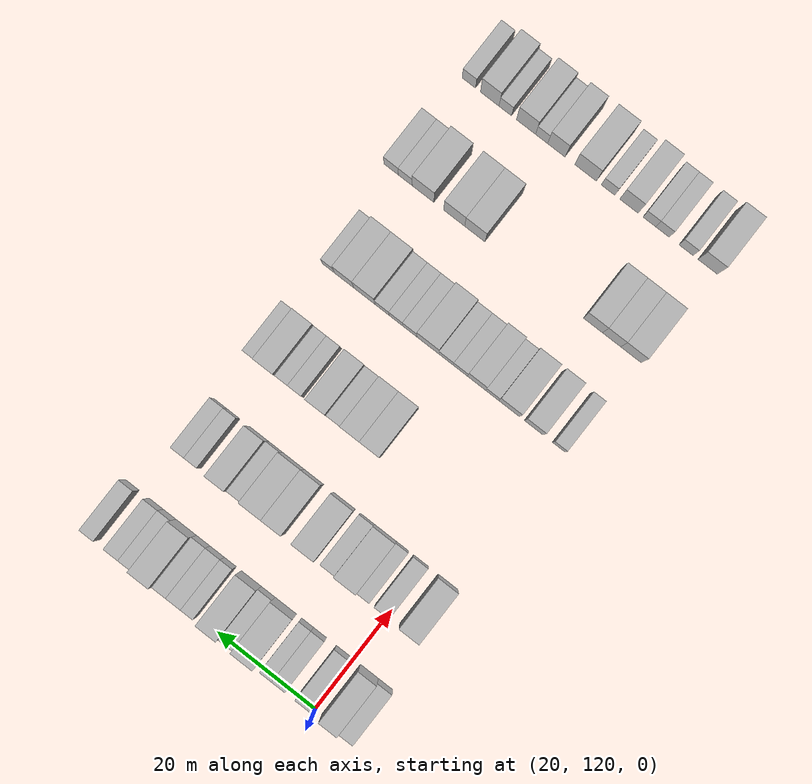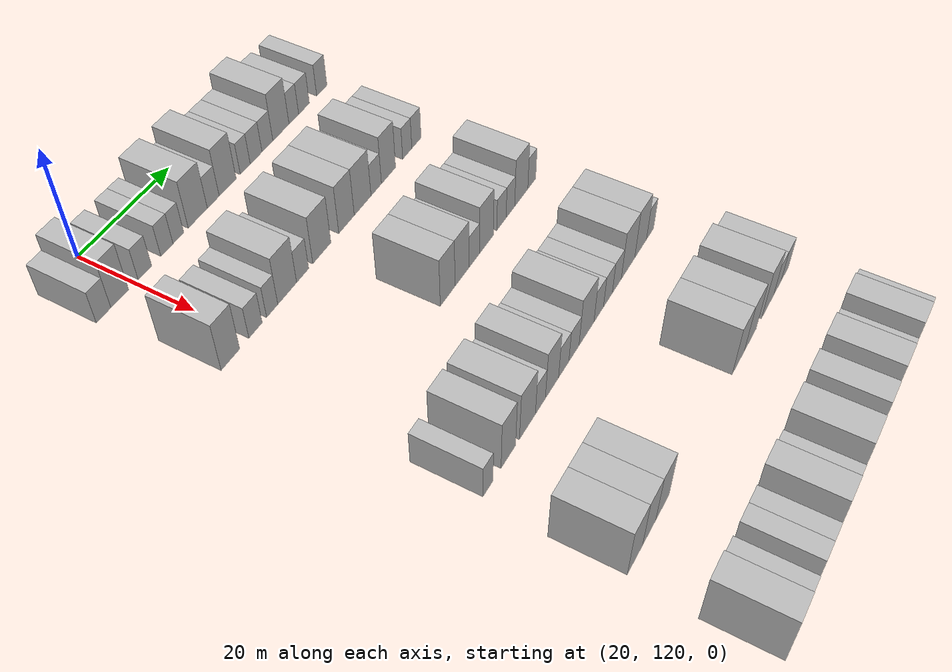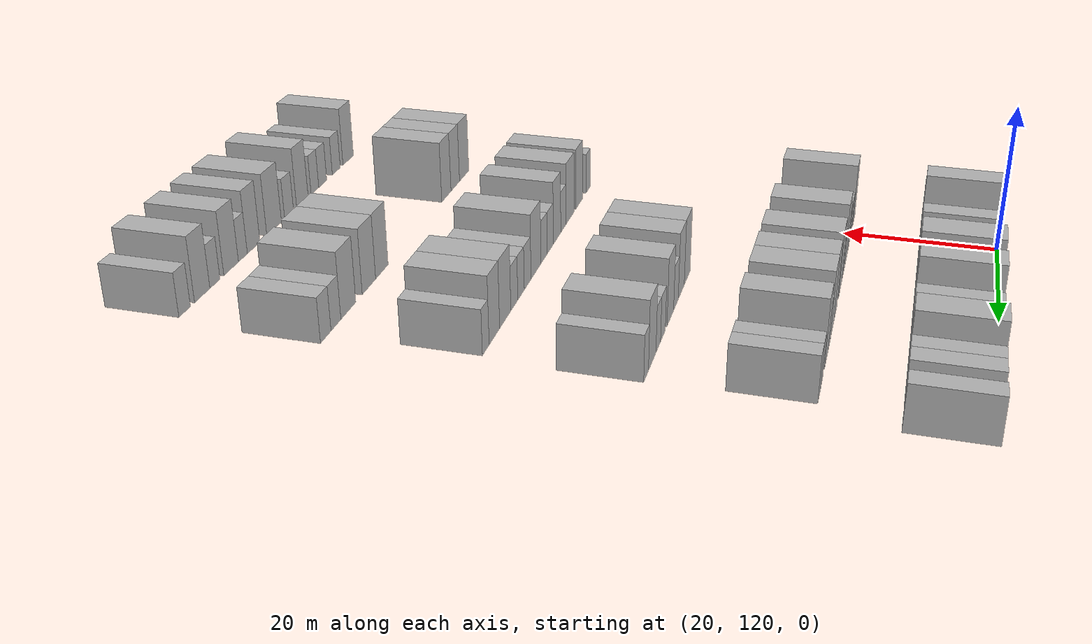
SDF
<sdf version="1.6">
 <world name="default">
  <model name="building_118">
   <static>1</static>
   <pose>25.0000 113.5463 0 0.000000 0.000000 0.000000</pose>
   <link name="link">
    <pose>0 0 3.00 0 0 0</pose>
    <collision name="collision"><geometry><box><size>10.0000 2.9407 6.0000</size></box></geometry></collision>
    <visual name="visual">
     <cast_shadows>0</cast_shadows>
     <geometry><box><size>10.0000 2.9407 6.0000</size></box></geometry>
     <material>
      <script>
       <uri>model://HANNAS_wall/materials/scripts</uri>
       <uri>model://HANNAS_wall/materials/textures</uri>
       <name>vrc/HANNAS_wall</name>
      </script>
     </material>
    </visual>
   </link>
  </model>
  <model name="building_119">
   <static>1</static>
   <pose>25.0000 116.8375 0 0.000000 0.000000 0.000000</pose>
   <link name="link">
    <pose>0 0 4.50 0 0 0</pose>
    <collision name="collision"><geometry><box><size>10.0000 3.6418 9.0000</size></box></geometry></collision>
    <visual name="visual">
     <cast_shadows>0</cast_shadows>
     <geometry><box><size>10.0000 3.6418 9.0000</size></box></geometry>
     <material>
      <script>
       <uri>model://HANNAS_wall/materials/scripts</uri>
       <uri>model://HANNAS_wall/materials/textures</uri>
       <name>vrc/HANNAS_wall</name>
      </script>
     </material>
    </visual>
   </link>
  </model>
  <model name="building_120">
   <static>1</static>
   <pose>25.0000 122.1015 0 0.000000 0.000000 0.000000</pose>
   <link name="link">
    <pose>0 0 3.00 0 0 0</pose>
    <collision name="collision"><geometry><box><size>10.0000 2.8862 6.0000</size></box></geometry></collision>
    <visual name="visual">
     <cast_shadows>0</cast_shadows>
     <geometry><box><size>10.0000 2.8862 6.0000</size></box></geometry>
     <material>
      <script>
       <uri>model://HANNAS_wall/materials/scripts</uri>
       <uri>model://HANNAS_wall/materials/textures</uri>
       <name>vrc/HANNAS_wall</name>
      </script>
     </material>
    </visual>
   </link>
  </model>
  <model name="building_121">
   <static>1</static>
   <pose>25.0000 126.8779 0 0.000000 0.000000 0.000000</pose>
   <link name="link">
    <pose>0 0 3.00 0 0 0</pose>
    <collision name="collision"><geometry><box><size>10.0000 2.6665 6.0000</size></box></geometry></collision>
    <visual name="visual">
     <cast_shadows>0</cast_shadows>
     <geometry><box><size>10.0000 2.6665 6.0000</size></box></geometry>
     <material>
      <script>
       <uri>model://HANNAS_wall/materials/scripts</uri>
       <uri>model://HANNAS_wall/materials/textures</uri>
       <name>vrc/HANNAS_wall</name>
      </script>
     </material>
    </visual>
   </link>
  </model>
  <model name="building_122">
   <static>1</static>
   <pose>25.0000 129.4175 0 0.000000 0.000000 0.000000</pose>
   <link name="link">
    <pose>0 0 3.00 0 0 0</pose>
    <collision name="collision"><geometry><box><size>10.0000 2.4127 6.0000</size></box></geometry></collision>
    <visual name="visual">
     <cast_shadows>0</cast_shadows>
     <geometry><box><size>10.0000 2.4127 6.0000</size></box></geometry>
     <material>
      <script>
       <uri>model://HANNAS_wall/materials/scripts</uri>
       <uri>model://HANNAS_wall/materials/textures</uri>
       <name>vrc/HANNAS_wall</name>
      </script>
     </material>
    </visual>
   </link>
  </model>
  <model name="building_123">
   <static>1</static>
   <pose>25.0000 133.8257 0 0.000000 0.000000 0.000000</pose>
   <link name="link">
    <pose>0 0 4.50 0 0 0</pose>
    <collision name="collision"><geometry><box><size>10.0000 4.4037 9.0000</size></box></geometry></collision>
    <visual name="visual">
     <cast_shadows>0</cast_shadows>
     <geometry><box><size>10.0000 4.4037 9.0000</size></box></geometry>
     <material>
      <script>
       <uri>model://HANNAS_wall/materials/scripts</uri>
       <uri>model://HANNAS_wall/materials/textures</uri>
       <name>vrc/HANNAS_wall</name>
      </script>
     </material>
    </visual>
   </link>
  </model>
  <model name="building_124">
   <static>1</static>
   <pose>25.0000 137.4277 0 0.000000 0.000000 0.000000</pose>
   <link name="link">
    <pose>0 0 3.00 0 0 0</pose>
    <collision name="collision"><geometry><box><size>10.0000 2.8002 6.0000</size></box></geometry></collision>
    <visual name="visual">
     <cast_shadows>0</cast_shadows>
     <geometry><box><size>10.0000 2.8002 6.0000</size></box></geometry>
     <material>
      <script>
       <uri>model://HANNAS_wall/materials/scripts</uri>
       <uri>model://HANNAS_wall/materials/textures</uri>
       <name>vrc/HANNAS_wall</name>
      </script>
     </material>
    </visual>
   </link>
  </model>
  <model name="building_125">
   <static>1</static>
   <pose>25.0000 140.8701 0 0.000000 0.000000 0.000000</pose>
   <link name="link">
    <pose>0 0 4.50 0 0 0</pose>
    <collision name="collision"><geometry><box><size>10.0000 4.0845 9.0000</size></box></geometry></collision>
    <visual name="visual">
     <cast_shadows>0</cast_shadows>
     <geometry><box><size>10.0000 4.0845 9.0000</size></box></geometry>
     <material>
      <script>
       <uri>model://HANNAS_wall/materials/scripts</uri>
       <uri>model://HANNAS_wall/materials/textures</uri>
       <name>vrc/HANNAS_wall</name>
      </script>
     </material>
    </visual>
   </link>
  </model>
  <model name="building_126">
   <static>1</static>
   <pose>25.0000 145.1497 0 0.000000 0.000000 0.000000</pose>
   <link name="link">
    <pose>0 0 3.00 0 0 0</pose>
    <collision name="collision"><geometry><box><size>10.0000 2.4747 6.0000</size></box></geometry></collision>
    <visual name="visual">
     <cast_shadows>0</cast_shadows>
     <geometry><box><size>10.0000 2.4747 6.0000</size></box></geometry>
     <material>
      <script>
       <uri>model://HANNAS_wall/materials/scripts</uri>
       <uri>model://HANNAS_wall/materials/textures</uri>
       <name>vrc/HANNAS_wall</name>
      </script>
     </material>
    </visual>
   </link>
  </model>
  <model name="building_127">
   <static>1</static>
   <pose>25.0000 147.8683 0 0.000000 0.000000 0.000000</pose>
   <link name="link">
    <pose>0 0 3.00 0 0 0</pose>
    <collision name="collision"><geometry><box><size>10.0000 2.9626 6.0000</size></box></geometry></collision>
    <visual name="visual">
     <cast_shadows>0</cast_shadows>
     <geometry><box><size>10.0000 2.9626 6.0000</size></box></geometry>
     <material>
      <script>
       <uri>model://HANNAS_wall/materials/scripts</uri>
       <uri>model://HANNAS_wall/materials/textures</uri>
       <name>vrc/HANNAS_wall</name>
      </script>
     </material>
    </visual>
   </link>
  </model>
  <model name="building_128">
   <static>1</static>
   <pose>25.0000 150.7436 0 0.000000 0.000000 0.000000</pose>
   <link name="link">
    <pose>0 0 3.00 0 0 0</pose>
    <collision name="collision"><geometry><box><size>10.0000 2.7879 6.0000</size></box></geometry></collision>
    <visual name="visual">
     <cast_shadows>0</cast_shadows>
     <geometry><box><size>10.0000 2.7879 6.0000</size></box></geometry>
     <material>
      <script>
       <uri>model://HANNAS_wall/materials/scripts</uri>
       <uri>model://HANNAS_wall/materials/textures</uri>
       <name>vrc/HANNAS_wall</name>
      </script>
     </material>
    </visual>
   </link>
  </model>
  <model name="building_129">
   <static>1</static>
   <pose>25.0000 154.2460 0 0.000000 0.000000 0.000000</pose>
   <link name="link">
    <pose>0 0 4.50 0 0 0</pose>
    <collision name="collision"><geometry><box><size>10.0000 4.2170 9.0000</size></box></geometry></collision>
    <visual name="visual">
     <cast_shadows>0</cast_shadows>
     <geometry><box><size>10.0000 4.2170 9.0000</size></box></geometry>
     <material>
      <script>
       <uri>model://HANNAS_wall/materials/scripts</uri>
       <uri>model://HANNAS_wall/materials/textures</uri>
       <name>vrc/HANNAS_wall</name>
      </script>
     </material>
    </visual>
   </link>
  </model>
  <model name="building_130">
   <static>1</static>
   <pose>25.0000 157.6413 0 0.000000 0.000000 0.000000</pose>
   <link name="link">
    <pose>0 0 3.00 0 0 0</pose>
    <collision name="collision"><geometry><box><size>10.0000 2.5736 6.0000</size></box></geometry></collision>
    <visual name="visual">
     <cast_shadows>0</cast_shadows>
     <geometry><box><size>10.0000 2.5736 6.0000</size></box></geometry>
     <material>
      <script>
       <uri>model://HANNAS_wall/materials/scripts</uri>
       <uri>model://HANNAS_wall/materials/textures</uri>
       <name>vrc/HANNAS_wall</name>
      </script>
     </material>
    </visual>
   </link>
  </model>
  <model name="building_131">
   <static>1</static>
   <pose>25.0000 160.3849 0 0.000000 0.000000 0.000000</pose>
   <link name="link">
    <pose>0 0 3.00 0 0 0</pose>
    <collision name="collision"><geometry><box><size>10.0000 2.9136 6.0000</size></box></geometry></collision>
    <visual name="visual">
     <cast_shadows>0</cast_shadows>
     <geometry><box><size>10.0000 2.9136 6.0000</size></box></geometry>
     <material>
      <script>
       <uri>model://HANNAS_wall/materials/scripts</uri>
       <uri>model://HANNAS_wall/materials/textures</uri>
       <name>vrc/HANNAS_wall</name>
      </script>
     </material>
    </visual>
   </link>
  </model>
  <model name="building_132">
   <static>1</static>
   <pose>25.0000 165.2762 0 0.000000 0.000000 0.000000</pose>
   <link name="link">
    <pose>0 0 3.00 0 0 0</pose>
    <collision name="collision"><geometry><box><size>10.0000 2.8690 6.0000</size></box></geometry></collision>
    <visual name="visual">
     <cast_shadows>0</cast_shadows>
     <geometry><box><size>10.0000 2.8690 6.0000</size></box></geometry>
     <material>
      <script>
       <uri>model://HANNAS_wall/materials/scripts</uri>
       <uri>model://HANNAS_wall/materials/textures</uri>
       <name>vrc/HANNAS_wall</name>
      </script>
     </material>
    </visual>
   </link>
  </model>
  <model name="building_296">
   <static>1</static>
   <pose>44.0000 115.7055 0 0.000000 0.000000 0.000000</pose>
   <link name="link">
    <pose>0 0 4.50 0 0 0</pose>
    <collision name="collision"><geometry><box><size>10.0000 3.9778 9.0000</size></box></geometry></collision>
    <visual name="visual">
     <cast_shadows>0</cast_shadows>
     <geometry><box><size>10.0000 3.9778 9.0000</size></box></geometry>
     <material>
      <script>
       <uri>model://HANNAS_wall/materials/scripts</uri>
       <uri>model://HANNAS_wall/materials/textures</uri>
       <name>vrc/HANNAS_wall</name>
      </script>
     </material>
    </visual>
   </link>
  </model>
  <model name="building_297">
   <static>1</static>
   <pose>44.0000 121.1790 0 0.000000 0.000000 0.000000</pose>
   <link name="link">
    <pose>0 0 3.00 0 0 0</pose>
    <collision name="collision"><geometry><box><size>10.0000 2.9692 6.0000</size></box></geometry></collision>
    <visual name="visual">
     <cast_shadows>0</cast_shadows>
     <geometry><box><size>10.0000 2.9692 6.0000</size></box></geometry>
     <material>
      <script>
       <uri>model://HANNAS_wall/materials/scripts</uri>
       <uri>model://HANNAS_wall/materials/textures</uri>
       <name>vrc/HANNAS_wall</name>
      </script>
     </material>
    </visual>
   </link>
  </model>
  <model name="building_298">
   <static>1</static>
   <pose>44.0000 124.9409 0 0.000000 0.000000 0.000000</pose>
   <link name="link">
    <pose>0 0 3.00 0 0 0</pose>
    <collision name="collision"><geometry><box><size>10.0000 2.5545 6.0000</size></box></geometry></collision>
    <visual name="visual">
     <cast_shadows>0</cast_shadows>
     <geometry><box><size>10.0000 2.5545 6.0000</size></box></geometry>
     <material>
      <script>
       <uri>model://HANNAS_wall/materials/scripts</uri>
       <uri>model://HANNAS_wall/materials/textures</uri>
       <name>vrc/HANNAS_wall</name>
      </script>
     </material>
    </visual>
   </link>
  </model>
  <model name="building_299">
   <static>1</static>
   <pose>44.0000 128.4243 0 0.000000 0.000000 0.000000</pose>
   <link name="link">
    <pose>0 0 4.50 0 0 0</pose>
    <collision name="collision"><geometry><box><size>10.0000 4.4123 9.0000</size></box></geometry></collision>
    <visual name="visual">
     <cast_shadows>0</cast_shadows>
     <geometry><box><size>10.0000 4.4123 9.0000</size></box></geometry>
     <material>
      <script>
       <uri>model://HANNAS_wall/materials/scripts</uri>
       <uri>model://HANNAS_wall/materials/textures</uri>
       <name>vrc/HANNAS_wall</name>
      </script>
     </material>
    </visual>
   </link>
  </model>
  <model name="building_300">
   <static>1</static>
   <pose>44.0000 132.0748 0 0.000000 0.000000 0.000000</pose>
   <link name="link">
    <pose>0 0 3.00 0 0 0</pose>
    <collision name="collision"><geometry><box><size>10.0000 2.8888 6.0000</size></box></geometry></collision>
    <visual name="visual">
     <cast_shadows>0</cast_shadows>
     <geometry><box><size>10.0000 2.8888 6.0000</size></box></geometry>
     <material>
      <script>
       <uri>model://HANNAS_wall/materials/scripts</uri>
       <uri>model://HANNAS_wall/materials/textures</uri>
       <name>vrc/HANNAS_wall</name>
      </script>
     </material>
    </visual>
   </link>
  </model>
  <model name="building_301">
   <static>1</static>
   <pose>44.0000 136.7576 0 0.000000 0.000000 0.000000</pose>
   <link name="link">
    <pose>0 0 4.50 0 0 0</pose>
    <collision name="collision"><geometry><box><size>10.0000 4.4769 9.0000</size></box></geometry></collision>
    <visual name="visual">
     <cast_shadows>0</cast_shadows>
     <geometry><box><size>10.0000 4.4769 9.0000</size></box></geometry>
     <material>
      <script>
       <uri>model://HANNAS_wall/materials/scripts</uri>
       <uri>model://HANNAS_wall/materials/textures</uri>
       <name>vrc/HANNAS_wall</name>
      </script>
     </material>
    </visual>
   </link>
  </model>
  <model name="building_302">
   <static>1</static>
   <pose>44.0000 142.9880 0 0.000000 0.000000 0.000000</pose>
   <link name="link">
    <pose>0 0 4.50 0 0 0</pose>
    <collision name="collision"><geometry><box><size>10.0000 3.9839 9.0000</size></box></geometry></collision>
    <visual name="visual">
     <cast_shadows>0</cast_shadows>
     <geometry><box><size>10.0000 3.9839 9.0000</size></box></geometry>
     <material>
      <script>
       <uri>model://HANNAS_wall/materials/scripts</uri>
       <uri>model://HANNAS_wall/materials/textures</uri>
       <name>vrc/HANNAS_wall</name>
      </script>
     </material>
    </visual>
   </link>
  </model>
  <model name="building_303">
   <static>1</static>
   <pose>44.0000 147.2025 0 0.000000 0.000000 0.000000</pose>
   <link name="link">
    <pose>0 0 4.50 0 0 0</pose>
    <collision name="collision"><geometry><box><size>10.0000 4.4451 9.0000</size></box></geometry></collision>
    <visual name="visual">
     <cast_shadows>0</cast_shadows>
     <geometry><box><size>10.0000 4.4451 9.0000</size></box></geometry>
     <material>
      <script>
       <uri>model://HANNAS_wall/materials/scripts</uri>
       <uri>model://HANNAS_wall/materials/textures</uri>
       <name>vrc/HANNAS_wall</name>
      </script>
     </material>
    </visual>
   </link>
  </model>
  <model name="building_304">
   <static>1</static>
   <pose>44.0000 150.8360 0 0.000000 0.000000 0.000000</pose>
   <link name="link">
    <pose>0 0 3.00 0 0 0</pose>
    <collision name="collision"><geometry><box><size>10.0000 2.8220 6.0000</size></box></geometry></collision>
    <visual name="visual">
     <cast_shadows>0</cast_shadows>
     <geometry><box><size>10.0000 2.8220 6.0000</size></box></geometry>
     <material>
      <script>
       <uri>model://HANNAS_wall/materials/scripts</uri>
       <uri>model://HANNAS_wall/materials/textures</uri>
       <name>vrc/HANNAS_wall</name>
      </script>
     </material>
    </visual>
   </link>
  </model>
  <model name="building_305">
   <static>1</static>
   <pose>44.0000 154.2042 0 0.000000 0.000000 0.000000</pose>
   <link name="link">
    <pose>0 0 4.50 0 0 0</pose>
    <collision name="collision"><geometry><box><size>10.0000 3.9146 9.0000</size></box></geometry></collision>
    <visual name="visual">
     <cast_shadows>0</cast_shadows>
     <geometry><box><size>10.0000 3.9146 9.0000</size></box></geometry>
     <material>
      <script>
       <uri>model://HANNAS_wall/materials/scripts</uri>
       <uri>model://HANNAS_wall/materials/textures</uri>
       <name>vrc/HANNAS_wall</name>
      </script>
     </material>
    </visual>
   </link>
  </model>
  <model name="building_306">
   <static>1</static>
   <pose>44.0000 159.4656 0 0.000000 0.000000 0.000000</pose>
   <link name="link">
    <pose>0 0 3.00 0 0 0</pose>
    <collision name="collision"><geometry><box><size>10.0000 2.6083 6.0000</size></box></geometry></collision>
    <visual name="visual">
     <cast_shadows>0</cast_shadows>
     <geometry><box><size>10.0000 2.6083 6.0000</size></box></geometry>
     <material>
      <script>
       <uri>model://HANNAS_wall/materials/scripts</uri>
       <uri>model://HANNAS_wall/materials/textures</uri>
       <name>vrc/HANNAS_wall</name>
      </script>
     </material>
    </visual>
   </link>
  </model>
  <model name="building_307">
   <static>1</static>
   <pose>44.0000 162.1146 0 0.000000 0.000000 0.000000</pose>
   <link name="link">
    <pose>0 0 3.00 0 0 0</pose>
    <collision name="collision"><geometry><box><size>10.0000 2.6896 6.0000</size></box></geometry></collision>
    <visual name="visual">
     <cast_shadows>0</cast_shadows>
     <geometry><box><size>10.0000 2.6896 6.0000</size></box></geometry>
     <material>
      <script>
       <uri>model://HANNAS_wall/materials/scripts</uri>
       <uri>model://HANNAS_wall/materials/textures</uri>
       <name>vrc/HANNAS_wall</name>
      </script>
     </material>
    </visual>
   </link>
  </model>
  <model name="building_470">
   <static>1</static>
   <pose>63.0000 138.4273 0 0.000000 0.000000 0.000000</pose>
   <link name="link">
    <pose>0 0 4.50 0 0 0</pose>
    <collision name="collision"><geometry><box><size>10.0000 3.9682 9.0000</size></box></geometry></collision>
    <visual name="visual">
     <cast_shadows>0</cast_shadows>
     <geometry><box><size>10.0000 3.9682 9.0000</size></box></geometry>
     <material>
      <script>
       <uri>model://HANNAS_wall/materials/scripts</uri>
       <uri>model://HANNAS_wall/materials/textures</uri>
       <name>vrc/HANNAS_wall</name>
      </script>
     </material>
    </visual>
   </link>
  </model>
  <model name="building_471">
   <static>1</static>
   <pose>63.0000 142.3563 0 0.000000 0.000000 0.000000</pose>
   <link name="link">
    <pose>0 0 4.50 0 0 0</pose>
    <collision name="collision"><geometry><box><size>10.0000 3.8898 9.0000</size></box></geometry></collision>
    <visual name="visual">
     <cast_shadows>0</cast_shadows>
     <geometry><box><size>10.0000 3.8898 9.0000</size></box></geometry>
     <material>
      <script>
       <uri>model://HANNAS_wall/materials/scripts</uri>
       <uri>model://HANNAS_wall/materials/textures</uri>
       <name>vrc/HANNAS_wall</name>
      </script>
     </material>
    </visual>
   </link>
  </model>
  <model name="building_472">
   <static>1</static>
   <pose>63.0000 145.7611 0 0.000000 0.000000 0.000000</pose>
   <link name="link">
    <pose>0 0 3.00 0 0 0</pose>
    <collision name="collision"><geometry><box><size>10.0000 2.9198 6.0000</size></box></geometry></collision>
    <visual name="visual">
     <cast_shadows>0</cast_shadows>
     <geometry><box><size>10.0000 2.9198 6.0000</size></box></geometry>
     <material>
      <script>
       <uri>model://HANNAS_wall/materials/scripts</uri>
       <uri>model://HANNAS_wall/materials/textures</uri>
       <name>vrc/HANNAS_wall</name>
      </script>
     </material>
    </visual>
   </link>
  </model>
  <model name="building_473">
   <static>1</static>
   <pose>63.0000 149.2072 0 0.000000 0.000000 0.000000</pose>
   <link name="link">
    <pose>0 0 4.50 0 0 0</pose>
    <collision name="collision"><geometry><box><size>10.0000 3.9723 9.0000</size></box></geometry></collision>
    <visual name="visual">
     <cast_shadows>0</cast_shadows>
     <geometry><box><size>10.0000 3.9723 9.0000</size></box></geometry>
     <material>
      <script>
       <uri>model://HANNAS_wall/materials/scripts</uri>
       <uri>model://HANNAS_wall/materials/textures</uri>
       <name>vrc/HANNAS_wall</name>
      </script>
     </material>
    </visual>
   </link>
  </model>
  <model name="building_474">
   <static>1</static>
   <pose>63.0000 153.5752 0 0.000000 0.000000 0.000000</pose>
   <link name="link">
    <pose>0 0 3.00 0 0 0</pose>
    <collision name="collision"><geometry><box><size>10.0000 2.7637 6.0000</size></box></geometry></collision>
    <visual name="visual">
     <cast_shadows>0</cast_shadows>
     <geometry><box><size>10.0000 2.7637 6.0000</size></box></geometry>
     <material>
      <script>
       <uri>model://HANNAS_wall/materials/scripts</uri>
       <uri>model://HANNAS_wall/materials/textures</uri>
       <name>vrc/HANNAS_wall</name>
      </script>
     </material>
    </visual>
   </link>
  </model>
  <model name="building_475">
   <static>1</static>
   <pose>63.0000 156.2429 0 0.000000 0.000000 0.000000</pose>
   <link name="link">
    <pose>0 0 3.00 0 0 0</pose>
    <collision name="collision"><geometry><box><size>10.0000 2.5715 6.0000</size></box></geometry></collision>
    <visual name="visual">
     <cast_shadows>0</cast_shadows>
     <geometry><box><size>10.0000 2.5715 6.0000</size></box></geometry>
     <material>
      <script>
       <uri>model://HANNAS_wall/materials/scripts</uri>
       <uri>model://HANNAS_wall/materials/textures</uri>
       <name>vrc/HANNAS_wall</name>
      </script>
     </material>
    </visual>
   </link>
  </model>
  <model name="building_476">
   <static>1</static>
   <pose>63.0000 159.5492 0 0.000000 0.000000 0.000000</pose>
   <link name="link">
    <pose>0 0 4.50 0 0 0</pose>
    <collision name="collision"><geometry><box><size>10.0000 4.0411 9.0000</size></box></geometry></collision>
    <visual name="visual">
     <cast_shadows>0</cast_shadows>
     <geometry><box><size>10.0000 4.0411 9.0000</size></box></geometry>
     <material>
      <script>
       <uri>model://HANNAS_wall/materials/scripts</uri>
       <uri>model://HANNAS_wall/materials/textures</uri>
       <name>vrc/HANNAS_wall</name>
      </script>
     </material>
    </visual>
   </link>
  </model>
  <model name="building_477">
   <static>1</static>
   <pose>63.0000 162.8063 0 0.000000 0.000000 0.000000</pose>
   <link name="link">
    <pose>0 0 3.00 0 0 0</pose>
    <collision name="collision"><geometry><box><size>10.0000 2.4732 6.0000</size></box></geometry></collision>
    <visual name="visual">
     <cast_shadows>0</cast_shadows>
     <geometry><box><size>10.0000 2.4732 6.0000</size></box></geometry>
     <material>
      <script>
       <uri>model://HANNAS_wall/materials/scripts</uri>
       <uri>model://HANNAS_wall/materials/textures</uri>
       <name>vrc/HANNAS_wall</name>
      </script>
     </material>
    </visual>
   </link>
  </model>
  <model name="building_641">
   <static>1</static>
   <pose>82.0000 114.8970 0 0.000000 0.000000 0.000000</pose>
   <link name="link">
    <pose>0 0 3.00 0 0 0</pose>
    <collision name="collision"><geometry><box><size>10.0000 2.4531 6.0000</size></box></geometry></collision>
    <visual name="visual">
     <cast_shadows>0</cast_shadows>
     <geometry><box><size>10.0000 2.4531 6.0000</size></box></geometry>
     <material>
      <script>
       <uri>model://HANNAS_wall/materials/scripts</uri>
       <uri>model://HANNAS_wall/materials/textures</uri>
       <name>vrc/HANNAS_wall</name>
      </script>
     </material>
    </visual>
   </link>
  </model>
  <model name="building_642">
   <static>1</static>
   <pose>82.0000 119.9865 0 0.000000 0.000000 0.000000</pose>
   <link name="link">
    <pose>0 0 4.50 0 0 0</pose>
    <collision name="collision"><geometry><box><size>10.0000 3.7260 9.0000</size></box></geometry></collision>
    <visual name="visual">
     <cast_shadows>0</cast_shadows>
     <geometry><box><size>10.0000 3.7260 9.0000</size></box></geometry>
     <material>
      <script>
       <uri>model://HANNAS_wall/materials/scripts</uri>
       <uri>model://HANNAS_wall/materials/textures</uri>
       <name>vrc/HANNAS_wall</name>
      </script>
     </material>
    </visual>
   </link>
  </model>
  <model name="building_643">
   <static>1</static>
   <pose>82.0000 124.9624 0 0.000000 0.000000 0.000000</pose>
   <link name="link">
    <pose>0 0 4.50 0 0 0</pose>
    <collision name="collision"><geometry><box><size>10.0000 4.2258 9.0000</size></box></geometry></collision>
    <visual name="visual">
     <cast_shadows>0</cast_shadows>
     <geometry><box><size>10.0000 4.2258 9.0000</size></box></geometry>
     <material>
      <script>
       <uri>model://HANNAS_wall/materials/scripts</uri>
       <uri>model://HANNAS_wall/materials/textures</uri>
       <name>vrc/HANNAS_wall</name>
      </script>
     </material>
    </visual>
   </link>
  </model>
  <model name="building_644">
   <static>1</static>
   <pose>82.0000 128.4296 0 0.000000 0.000000 0.000000</pose>
   <link name="link">
    <pose>0 0 3.00 0 0 0</pose>
    <collision name="collision"><geometry><box><size>10.0000 2.7086 6.0000</size></box></geometry></collision>
    <visual name="visual">
     <cast_shadows>0</cast_shadows>
     <geometry><box><size>10.0000 2.7086 6.0000</size></box></geometry>
     <material>
      <script>
       <uri>model://HANNAS_wall/materials/scripts</uri>
       <uri>model://HANNAS_wall/materials/textures</uri>
       <name>vrc/HANNAS_wall</name>
      </script>
     </material>
    </visual>
   </link>
  </model>
  <model name="building_645">
   <static>1</static>
   <pose>82.0000 131.6183 0 0.000000 0.000000 0.000000</pose>
   <link name="link">
    <pose>0 0 4.50 0 0 0</pose>
    <collision name="collision"><geometry><box><size>10.0000 3.6688 9.0000</size></box></geometry></collision>
    <visual name="visual">
     <cast_shadows>0</cast_shadows>
     <geometry><box><size>10.0000 3.6688 9.0000</size></box></geometry>
     <material>
      <script>
       <uri>model://HANNAS_wall/materials/scripts</uri>
       <uri>model://HANNAS_wall/materials/textures</uri>
       <name>vrc/HANNAS_wall</name>
      </script>
     </material>
    </visual>
   </link>
  </model>
  <model name="building_646">
   <static>1</static>
   <pose>82.0000 134.9226 0 0.000000 0.000000 0.000000</pose>
   <link name="link">
    <pose>0 0 3.00 0 0 0</pose>
    <collision name="collision"><geometry><box><size>10.0000 2.9398 6.0000</size></box></geometry></collision>
    <visual name="visual">
     <cast_shadows>0</cast_shadows>
     <geometry><box><size>10.0000 2.9398 6.0000</size></box></geometry>
     <material>
      <script>
       <uri>model://HANNAS_wall/materials/scripts</uri>
       <uri>model://HANNAS_wall/materials/textures</uri>
       <name>vrc/HANNAS_wall</name>
      </script>
     </material>
    </visual>
   </link>
  </model>
  <model name="building_647">
   <static>1</static>
   <pose>82.0000 137.8732 0 0.000000 0.000000 0.000000</pose>
   <link name="link">
    <pose>0 0 3.00 0 0 0</pose>
    <collision name="collision"><geometry><box><size>10.0000 2.9614 6.0000</size></box></geometry></collision>
    <visual name="visual">
     <cast_shadows>0</cast_shadows>
     <geometry><box><size>10.0000 2.9614 6.0000</size></box></geometry>
     <material>
      <script>
       <uri>model://HANNAS_wall/materials/scripts</uri>
       <uri>model://HANNAS_wall/materials/textures</uri>
       <name>vrc/HANNAS_wall</name>
      </script>
     </material>
    </visual>
   </link>
  </model>
  <model name="building_648">
   <static>1</static>
   <pose>82.0000 141.5845 0 0.000000 0.000000 0.000000</pose>
   <link name="link">
    <pose>0 0 4.50 0 0 0</pose>
    <collision name="collision"><geometry><box><size>10.0000 4.4611 9.0000</size></box></geometry></collision>
    <visual name="visual">
     <cast_shadows>0</cast_shadows>
     <geometry><box><size>10.0000 4.4611 9.0000</size></box></geometry>
     <material>
      <script>
       <uri>model://HANNAS_wall/materials/scripts</uri>
       <uri>model://HANNAS_wall/materials/textures</uri>
       <name>vrc/HANNAS_wall</name>
      </script>
     </material>
    </visual>
   </link>
  </model>
  <model name="building_649">
   <static>1</static>
   <pose>82.0000 145.2765 0 0.000000 0.000000 0.000000</pose>
   <link name="link">
    <pose>0 0 3.00 0 0 0</pose>
    <collision name="collision"><geometry><box><size>10.0000 2.9230 6.0000</size></box></geometry></collision>
    <visual name="visual">
     <cast_shadows>0</cast_shadows>
     <geometry><box><size>10.0000 2.9230 6.0000</size></box></geometry>
     <material>
      <script>
       <uri>model://HANNAS_wall/materials/scripts</uri>
       <uri>model://HANNAS_wall/materials/textures</uri>
       <name>vrc/HANNAS_wall</name>
      </script>
     </material>
    </visual>
   </link>
  </model>
  <model name="building_650">
   <static>1</static>
   <pose>82.0000 148.1192 0 0.000000 0.000000 0.000000</pose>
   <link name="link">
    <pose>0 0 3.00 0 0 0</pose>
    <collision name="collision"><geometry><box><size>10.0000 2.7626 6.0000</size></box></geometry></collision>
    <visual name="visual">
     <cast_shadows>0</cast_shadows>
     <geometry><box><size>10.0000 2.7626 6.0000</size></box></geometry>
     <material>
      <script>
       <uri>model://HANNAS_wall/materials/scripts</uri>
       <uri>model://HANNAS_wall/materials/textures</uri>
       <name>vrc/HANNAS_wall</name>
      </script>
     </material>
    </visual>
   </link>
  </model>
  <model name="building_651">
   <static>1</static>
   <pose>82.0000 150.9292 0 0.000000 0.000000 0.000000</pose>
   <link name="link">
    <pose>0 0 3.00 0 0 0</pose>
    <collision name="collision"><geometry><box><size>10.0000 2.8573 6.0000</size></box></geometry></collision>
    <visual name="visual">
     <cast_shadows>0</cast_shadows>
     <geometry><box><size>10.0000 2.8573 6.0000</size></box></geometry>
     <material>
      <script>
       <uri>model://HANNAS_wall/materials/scripts</uri>
       <uri>model://HANNAS_wall/materials/textures</uri>
       <name>vrc/HANNAS_wall</name>
      </script>
     </material>
    </visual>
   </link>
  </model>
  <model name="building_652">
   <static>1</static>
   <pose>82.0000 154.5561 0 0.000000 0.000000 0.000000</pose>
   <link name="link">
    <pose>0 0 4.50 0 0 0</pose>
    <collision name="collision"><geometry><box><size>10.0000 4.3965 9.0000</size></box></geometry></collision>
    <visual name="visual">
     <cast_shadows>0</cast_shadows>
     <geometry><box><size>10.0000 4.3965 9.0000</size></box></geometry>
     <material>
      <script>
       <uri>model://HANNAS_wall/materials/scripts</uri>
       <uri>model://HANNAS_wall/materials/textures</uri>
       <name>vrc/HANNAS_wall</name>
      </script>
     </material>
    </visual>
   </link>
  </model>
  <model name="building_653">
   <static>1</static>
   <pose>82.0000 158.7388 0 0.000000 0.000000 0.000000</pose>
   <link name="link">
    <pose>0 0 4.50 0 0 0</pose>
    <collision name="collision"><geometry><box><size>10.0000 3.9690 9.0000</size></box></geometry></collision>
    <visual name="visual">
     <cast_shadows>0</cast_shadows>
     <geometry><box><size>10.0000 3.9690 9.0000</size></box></geometry>
     <material>
      <script>
       <uri>model://HANNAS_wall/materials/scripts</uri>
       <uri>model://HANNAS_wall/materials/textures</uri>
       <name>vrc/HANNAS_wall</name>
      </script>
     </material>
    </visual>
   </link>
  </model>
  <model name="building_654">
   <static>1</static>
   <pose>82.0000 161.9550 0 0.000000 0.000000 0.000000</pose>
   <link name="link">
    <pose>0 0 3.00 0 0 0</pose>
    <collision name="collision"><geometry><box><size>10.0000 2.4633 6.0000</size></box></geometry></collision>
    <visual name="visual">
     <cast_shadows>0</cast_shadows>
     <geometry><box><size>10.0000 2.4633 6.0000</size></box></geometry>
     <material>
      <script>
       <uri>model://HANNAS_wall/materials/scripts</uri>
       <uri>model://HANNAS_wall/materials/textures</uri>
       <name>vrc/HANNAS_wall</name>
      </script>
     </material>
    </visual>
   </link>
  </model>
  <model name="building_823">
   <static>1</static>
   <pose>101.0000 114.7687 0 0.000000 0.000000 0.000000</pose>
   <link name="link">
    <pose>0 0 4.50 0 0 0</pose>
    <collision name="collision"><geometry><box><size>10.0000 4.1750 9.0000</size></box></geometry></collision>
    <visual name="visual">
     <cast_shadows>0</cast_shadows>
     <geometry><box><size>10.0000 4.1750 9.0000</size></box></geometry>
     <material>
      <script>
       <uri>model://HANNAS_wall/materials/scripts</uri>
       <uri>model://HANNAS_wall/materials/textures</uri>
       <name>vrc/HANNAS_wall</name>
      </script>
     </material>
    </visual>
   </link>
  </model>
  <model name="building_824">
   <static>1</static>
   <pose>101.0000 118.7078 0 0.000000 0.000000 0.000000</pose>
   <link name="link">
    <pose>0 0 4.50 0 0 0</pose>
    <collision name="collision"><geometry><box><size>10.0000 3.7032 9.0000</size></box></geometry></collision>
    <visual name="visual">
     <cast_shadows>0</cast_shadows>
     <geometry><box><size>10.0000 3.7032 9.0000</size></box></geometry>
     <material>
      <script>
       <uri>model://HANNAS_wall/materials/scripts</uri>
       <uri>model://HANNAS_wall/materials/textures</uri>
       <name>vrc/HANNAS_wall</name>
      </script>
     </material>
    </visual>
   </link>
  </model>
  <model name="building_825">
   <static>1</static>
   <pose>101.0000 122.5035 0 0.000000 0.000000 0.000000</pose>
   <link name="link">
    <pose>0 0 4.50 0 0 0</pose>
    <collision name="collision"><geometry><box><size>10.0000 3.8883 9.0000</size></box></geometry></collision>
    <visual name="visual">
     <cast_shadows>0</cast_shadows>
     <geometry><box><size>10.0000 3.8883 9.0000</size></box></geometry>
     <material>
      <script>
       <uri>model://HANNAS_wall/materials/scripts</uri>
       <uri>model://HANNAS_wall/materials/textures</uri>
       <name>vrc/HANNAS_wall</name>
      </script>
     </material>
    </visual>
   </link>
  </model>
  <model name="building_826">
   <static>1</static>
   <pose>101.0000 146.7134 0 0.000000 0.000000 0.000000</pose>
   <link name="link">
    <pose>0 0 4.50 0 0 0</pose>
    <collision name="collision"><geometry><box><size>10.0000 4.1771 9.0000</size></box></geometry></collision>
    <visual name="visual">
     <cast_shadows>0</cast_shadows>
     <geometry><box><size>10.0000 4.1771 9.0000</size></box></geometry>
     <material>
      <script>
       <uri>model://HANNAS_wall/materials/scripts</uri>
       <uri>model://HANNAS_wall/materials/textures</uri>
       <name>vrc/HANNAS_wall</name>
      </script>
     </material>
    </visual>
   </link>
  </model>
  <model name="building_827">
   <static>1</static>
   <pose>101.0000 150.9550 0 0.000000 0.000000 0.000000</pose>
   <link name="link">
    <pose>0 0 4.50 0 0 0</pose>
    <collision name="collision"><geometry><box><size>10.0000 4.3060 9.0000</size></box></geometry></collision>
    <visual name="visual">
     <cast_shadows>0</cast_shadows>
     <geometry><box><size>10.0000 4.3060 9.0000</size></box></geometry>
     <material>
      <script>
       <uri>model://HANNAS_wall/materials/scripts</uri>
       <uri>model://HANNAS_wall/materials/textures</uri>
       <name>vrc/HANNAS_wall</name>
      </script>
     </material>
    </visual>
   </link>
  </model>
  <model name="building_828">
   <static>1</static>
   <pose>101.0000 157.3459 0 0.000000 0.000000 0.000000</pose>
   <link name="link">
    <pose>0 0 4.50 0 0 0</pose>
    <collision name="collision"><geometry><box><size>10.0000 4.4759 9.0000</size></box></geometry></collision>
    <visual name="visual">
     <cast_shadows>0</cast_shadows>
     <geometry><box><size>10.0000 4.4759 9.0000</size></box></geometry>
     <material>
      <script>
       <uri>model://HANNAS_wall/materials/scripts</uri>
       <uri>model://HANNAS_wall/materials/textures</uri>
       <name>vrc/HANNAS_wall</name>
      </script>
     </material>
    </visual>
   </link>
  </model>
  <model name="building_829">
   <static>1</static>
   <pose>101.0000 161.0103 0 0.000000 0.000000 0.000000</pose>
   <link name="link">
    <pose>0 0 3.00 0 0 0</pose>
    <collision name="collision"><geometry><box><size>10.0000 2.8531 6.0000</size></box></geometry></collision>
    <visual name="visual">
     <cast_shadows>0</cast_shadows>
     <geometry><box><size>10.0000 2.8531 6.0000</size></box></geometry>
     <material>
      <script>
       <uri>model://HANNAS_wall/materials/scripts</uri>
       <uri>model://HANNAS_wall/materials/textures</uri>
       <name>vrc/HANNAS_wall</name>
      </script>
     </material>
    </visual>
   </link>
  </model>
  <model name="building_830">
   <static>1</static>
   <pose>101.0000 163.9146 0 0.000000 0.000000 0.000000</pose>
   <link name="link">
    <pose>0 0 3.00 0 0 0</pose>
    <collision name="collision"><geometry><box><size>10.0000 2.9554 6.0000</size></box></geometry></collision>
    <visual name="visual">
     <cast_shadows>0</cast_shadows>
     <geometry><box><size>10.0000 2.9554 6.0000</size></box></geometry>
     <material>
      <script>
       <uri>model://HANNAS_wall/materials/scripts</uri>
       <uri>model://HANNAS_wall/materials/textures</uri>
       <name>vrc/HANNAS_wall</name>
      </script>
     </material>
    </visual>
   </link>
  </model>
  <model name="building_992">
   <static>1</static>
   <pose>120.0000 113.6361 0 0.000000 0.000000 0.000000</pose>
   <link name="link">
    <pose>0 0 4.50 0 0 0</pose>
    <collision name="collision"><geometry><box><size>10.0000 3.9352 9.0000</size></box></geometry></collision>
    <visual name="visual">
     <cast_shadows>0</cast_shadows>
     <geometry><box><size>10.0000 3.9352 9.0000</size></box></geometry>
     <material>
      <script>
       <uri>model://HANNAS_wall/materials/scripts</uri>
       <uri>model://HANNAS_wall/materials/textures</uri>
       <name>vrc/HANNAS_wall</name>
      </script>
     </material>
    </visual>
   </link>
  </model>
  <model name="building_993">
   <static>1</static>
   <pose>120.0000 118.0402 0 0.000000 0.000000 0.000000</pose>
   <link name="link">
    <pose>0 0 3.00 0 0 0</pose>
    <collision name="collision"><geometry><box><size>10.0000 2.8728 6.0000</size></box></geometry></collision>
    <visual name="visual">
     <cast_shadows>0</cast_shadows>
     <geometry><box><size>10.0000 2.8728 6.0000</size></box></geometry>
     <material>
      <script>
       <uri>model://HANNAS_wall/materials/scripts</uri>
       <uri>model://HANNAS_wall/materials/textures</uri>
       <name>vrc/HANNAS_wall</name>
      </script>
     </material>
    </visual>
   </link>
  </model>
  <model name="building_994">
   <static>1</static>
   <pose>120.0000 122.8713 0 0.000000 0.000000 0.000000</pose>
   <link name="link">
    <pose>0 0 3.00 0 0 0</pose>
    <collision name="collision"><geometry><box><size>10.0000 2.7894 6.0000</size></box></geometry></collision>
    <visual name="visual">
     <cast_shadows>0</cast_shadows>
     <geometry><box><size>10.0000 2.7894 6.0000</size></box></geometry>
     <material>
      <script>
       <uri>model://HANNAS_wall/materials/scripts</uri>
       <uri>model://HANNAS_wall/materials/textures</uri>
       <name>vrc/HANNAS_wall</name>
      </script>
     </material>
    </visual>
   </link>
  </model>
  <model name="building_995">
   <static>1</static>
   <pose>120.0000 125.5626 0 0.000000 0.000000 0.000000</pose>
   <link name="link">
    <pose>0 0 3.00 0 0 0</pose>
    <collision name="collision"><geometry><box><size>10.0000 2.5933 6.0000</size></box></geometry></collision>
    <visual name="visual">
     <cast_shadows>0</cast_shadows>
     <geometry><box><size>10.0000 2.5933 6.0000</size></box></geometry>
     <material>
      <script>
       <uri>model://HANNAS_wall/materials/scripts</uri>
       <uri>model://HANNAS_wall/materials/textures</uri>
       <name>vrc/HANNAS_wall</name>
      </script>
     </material>
    </visual>
   </link>
  </model>
  <model name="building_996">
   <static>1</static>
   <pose>120.0000 129.7447 0 0.000000 0.000000 0.000000</pose>
   <link name="link">
    <pose>0 0 4.50 0 0 0</pose>
    <collision name="collision"><geometry><box><size>10.0000 3.7709 9.0000</size></box></geometry></collision>
    <visual name="visual">
     <cast_shadows>0</cast_shadows>
     <geometry><box><size>10.0000 3.7709 9.0000</size></box></geometry>
     <material>
      <script>
       <uri>model://HANNAS_wall/materials/scripts</uri>
       <uri>model://HANNAS_wall/materials/textures</uri>
       <name>vrc/HANNAS_wall</name>
      </script>
     </material>
    </visual>
   </link>
  </model>
  <model name="building_997">
   <static>1</static>
   <pose>120.0000 134.0260 0 0.000000 0.000000 0.000000</pose>
   <link name="link">
    <pose>0 0 3.00 0 0 0</pose>
    <collision name="collision"><geometry><box><size>10.0000 2.7918 6.0000</size></box></geometry></collision>
    <visual name="visual">
     <cast_shadows>0</cast_shadows>
     <geometry><box><size>10.0000 2.7918 6.0000</size></box></geometry>
     <material>
      <script>
       <uri>model://HANNAS_wall/materials/scripts</uri>
       <uri>model://HANNAS_wall/materials/textures</uri>
       <name>vrc/HANNAS_wall</name>
      </script>
     </material>
    </visual>
   </link>
  </model>
  <model name="building_998">
   <static>1</static>
   <pose>120.0000 138.6402 0 0.000000 0.000000 0.000000</pose>
   <link name="link">
    <pose>0 0 4.50 0 0 0</pose>
    <collision name="collision"><geometry><box><size>10.0000 4.4365 9.0000</size></box></geometry></collision>
    <visual name="visual">
     <cast_shadows>0</cast_shadows>
     <geometry><box><size>10.0000 4.4365 9.0000</size></box></geometry>
     <material>
      <script>
       <uri>model://HANNAS_wall/materials/scripts</uri>
       <uri>model://HANNAS_wall/materials/textures</uri>
       <name>vrc/HANNAS_wall</name>
      </script>
     </material>
    </visual>
   </link>
  </model>
  <model name="building_999">
   <static>1</static>
   <pose>120.0000 144.6614 0 0.000000 0.000000 0.000000</pose>
   <link name="link">
    <pose>0 0 4.50 0 0 0</pose>
    <collision name="collision"><geometry><box><size>10.0000 3.6059 9.0000</size></box></geometry></collision>
    <visual name="visual">
     <cast_shadows>0</cast_shadows>
     <geometry><box><size>10.0000 3.6059 9.0000</size></box></geometry>
     <material>
      <script>
       <uri>model://HANNAS_wall/materials/scripts</uri>
       <uri>model://HANNAS_wall/materials/textures</uri>
       <name>vrc/HANNAS_wall</name>
      </script>
     </material>
    </visual>
   </link>
  </model>
  <model name="building_1000">
   <static>1</static>
   <pose>120.0000 147.7013 0 0.000000 0.000000 0.000000</pose>
   <link name="link">
    <pose>0 0 3.00 0 0 0</pose>
    <collision name="collision"><geometry><box><size>10.0000 2.4739 6.0000</size></box></geometry></collision>
    <visual name="visual">
     <cast_shadows>0</cast_shadows>
     <geometry><box><size>10.0000 2.4739 6.0000</size></box></geometry>
     <material>
      <script>
       <uri>model://HANNAS_wall/materials/scripts</uri>
       <uri>model://HANNAS_wall/materials/textures</uri>
       <name>vrc/HANNAS_wall</name>
      </script>
     </material>
    </visual>
   </link>
  </model>
  <model name="building_1001">
   <static>1</static>
   <pose>120.0000 150.9055 0 0.000000 0.000000 0.000000</pose>
   <link name="link">
    <pose>0 0 4.50 0 0 0</pose>
    <collision name="collision"><geometry><box><size>10.0000 3.9346 9.0000</size></box></geometry></collision>
    <visual name="visual">
     <cast_shadows>0</cast_shadows>
     <geometry><box><size>10.0000 3.9346 9.0000</size></box></geometry>
     <material>
      <script>
       <uri>model://HANNAS_wall/materials/scripts</uri>
       <uri>model://HANNAS_wall/materials/textures</uri>
       <name>vrc/HANNAS_wall</name>
      </script>
     </material>
    </visual>
   </link>
  </model>
  <model name="building_1002">
   <static>1</static>
   <pose>120.0000 155.1734 0 0.000000 0.000000 0.000000</pose>
   <link name="link">
    <pose>0 0 3.00 0 0 0</pose>
    <collision name="collision"><geometry><box><size>10.0000 2.6011 6.0000</size></box></geometry></collision>
    <visual name="visual">
     <cast_shadows>0</cast_shadows>
     <geometry><box><size>10.0000 2.6011 6.0000</size></box></geometry>
     <material>
      <script>
       <uri>model://HANNAS_wall/materials/scripts</uri>
       <uri>model://HANNAS_wall/materials/textures</uri>
       <name>vrc/HANNAS_wall</name>
      </script>
     </material>
    </visual>
   </link>
  </model>
  <model name="building_1003">
   <static>1</static>
   <pose>120.0000 158.3869 0 0.000000 0.000000 0.000000</pose>
   <link name="link">
    <pose>0 0 4.50 0 0 0</pose>
    <collision name="collision"><geometry><box><size>10.0000 3.8260 9.0000</size></box></geometry></collision>
    <visual name="visual">
     <cast_shadows>0</cast_shadows>
     <geometry><box><size>10.0000 3.8260 9.0000</size></box></geometry>
     <material>
      <script>
       <uri>model://HANNAS_wall/materials/scripts</uri>
       <uri>model://HANNAS_wall/materials/textures</uri>
       <name>vrc/HANNAS_wall</name>
      </script>
     </material>
    </visual>
   </link>
  </model>
  <model name="building_1004">
   <static>1</static>
   <pose>120.0000 162.6808 0 0.000000 0.000000 0.000000</pose>
   <link name="link">
    <pose>0 0 3.00 0 0 0</pose>
    <collision name="collision"><geometry><box><size>10.0000 2.7618 6.0000</size></box></geometry></collision>
    <visual name="visual">
     <cast_shadows>0</cast_shadows>
     <geometry><box><size>10.0000 2.7618 6.0000</size></box></geometry>
     <material>
      <script>
       <uri>model://HANNAS_wall/materials/scripts</uri>
       <uri>model://HANNAS_wall/materials/textures</uri>
       <name>vrc/HANNAS_wall</name>
      </script>
     </material>
    </visual>
   </link>
  </model>
 </world>
</sdf>
